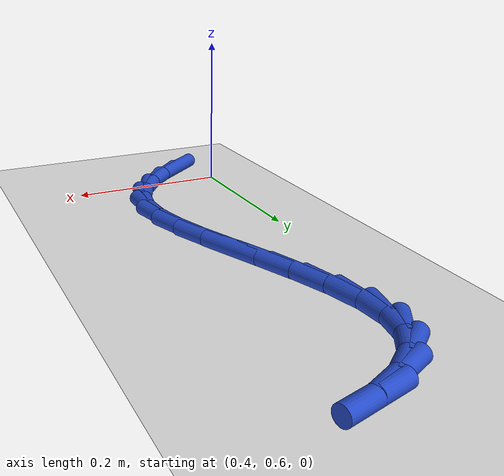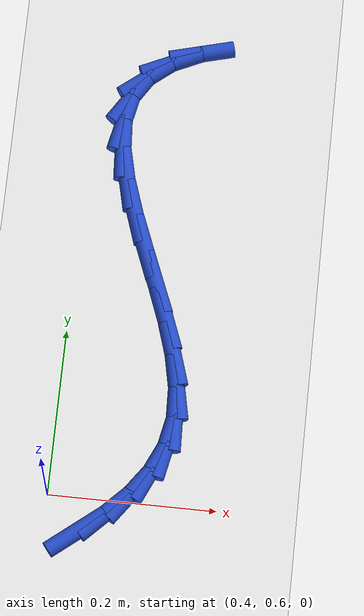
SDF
<sdf version="1.6">
 <world name="default">
  <model name="ground_plane">
   <static>1</static>
   <link name="link">
    <collision name="collision">
     <geometry><plane><normal>0 0 1</normal><size>100 100</size></plane></geometry>
     <surface><friction><ode><mu>100</mu><mu2>50</mu2></ode></friction></surface>
    </collision>
    <visual name="visual">
     <cast_shadows>0</cast_shadows>
     <geometry><plane><normal>0 0 1</normal><size>100 100</size></plane></geometry>
     <material>
      <script><uri>file://media/materials/scripts/gazebo.material</uri><name>Gazebo/WhiteGlow</name></script>
     </material>
    </visual>
   </link>
  </model>
  <model name="line">
   <link name="link_18">
    <pose>0.4389373444597569 0.5576127364197254 0.01 0 1.57 0.6746091817504541</pose>
    <collision name="collision">
     <geometry><cylinder><radius>0.01</radius><length>0.08</length></cylinder></geometry>
    </collision>
    <visual name="visual">
     <material>
      <script><name>Gazebo/Blue</name><uri>file://media/materials/scripts/gazebo.material</uri></script>
     </material>
     <geometry><cylinder><radius>0.01</radius><length>0.08</length></cylinder></geometry>
    </visual>
   </link>
   <link name="link_19">
    <pose>0.4703544971780613 0.5827396704660501 0.01 0 1.57 0.7889035346942662</pose>
    <collision name="collision">
     <geometry><cylinder><radius>0.01</radius><length>0.08</length></cylinder></geometry>
    </collision>
    <visual name="visual">
     <material>
      <script><name>Gazebo/Blue</name><uri>file://media/materials/scripts/gazebo.material</uri></script>
     </material>
     <geometry><cylinder><radius>0.01</radius><length>0.08</length></cylinder></geometry>
    </visual>
   </link>
   <link name="link_20">
    <pose>0.4970223685246496 0.6095951618404989 0.01 0 1.57 0.9435782249534778</pose>
    <collision name="collision">
     <geometry><cylinder><radius>0.01</radius><length>0.08</length></cylinder></geometry>
    </collision>
    <visual name="visual">
     <material>
      <script><name>Gazebo/Blue</name><uri>file://media/materials/scripts/gazebo.material</uri></script>
     </material>
     <geometry><cylinder><radius>0.01</radius><length>0.08</length></cylinder></geometry>
    </visual>
   </link>
   <link name="link_21">
    <pose>0.518029826530738 0.6385764598512735 0.01 0 1.57 1.1411280348317558</pose>
    <collision name="collision">
     <geometry><cylinder><radius>0.01</radius><length>0.08</length></cylinder></geometry>
    </collision>
    <visual name="visual">
     <material>
      <script><name>Gazebo/Blue</name><uri>file://media/materials/scripts/gazebo.material</uri></script>
     </material>
     <geometry><cylinder><radius>0.01</radius><length>0.08</length></cylinder></geometry>
    </visual>
   </link>
   <link name="link_22">
    <pose>0.5324657392275438 0.6700808138065765 0.01 0 1.57 1.3714936634912922</pose>
    <collision name="collision">
     <geometry><cylinder><radius>0.01</radius><length>0.08</length></cylinder></geometry>
    </collision>
    <visual name="visual">
     <material>
      <script><name>Gazebo/Blue</name><uri>file://media/materials/scripts/gazebo.material</uri></script>
     </material>
     <geometry><cylinder><radius>0.01</radius><length>0.08</length></cylinder></geometry>
    </visual>
   </link>
   <link name="link_23">
    <pose>0.5394189746462833 0.7045054730146092 0.01 0 1.57 -1.5384329638940883</pose>
    <collision name="collision">
     <geometry><cylinder><radius>0.01</radius><length>0.08</length></cylinder></geometry>
    </collision>
    <visual name="visual">
     <material>
      <script><name>Gazebo/Blue</name><uri>file://media/materials/scripts/gazebo.material</uri></script>
     </material>
     <geometry><cylinder><radius>0.01</radius><length>0.08</length></cylinder></geometry>
    </visual>
   </link>
   <link name="link_24">
    <pose>0.5382001902299707 0.7421517113626651 0.01 0 1.57 -1.3685313954959126</pose>
    <collision name="collision">
     <geometry><cylinder><radius>0.01</radius><length>0.08</length></cylinder></geometry>
    </collision>
    <visual name="visual">
     <material>
      <script><name>Gazebo/Blue</name><uri>file://media/materials/scripts/gazebo.material</uri></script>
     </material>
     <geometry><cylinder><radius>0.01</radius><length>0.08</length></cylinder></geometry>
    </visual>
   </link>
   <link name="link_25">
    <pose>0.529917156613375 0.7825431339863955 0.01 0 1.57 -1.2645890546343348</pose>
    <collision name="collision">
     <geometry><cylinder><radius>0.01</radius><length>0.08</length></cylinder></geometry>
    </collision>
    <visual name="visual">
     <material>
      <script><name>Gazebo/Blue</name><uri>file://media/materials/scripts/gazebo.material</uri></script>
     </material>
     <geometry><cylinder><radius>0.01</radius><length>0.08</length></cylinder></geometry>
    </visual>
   </link>
   <link name="link_26">
    <pose>0.5165493606276207 0.8248261263508623 0.01 0 1.57 -1.207522079708169</pose>
    <collision name="collision">
     <geometry><cylinder><radius>0.01</radius><length>0.08</length></cylinder></geometry>
    </collision>
    <visual name="visual">
     <material>
      <script><name>Gazebo/Blue</name><uri>file://media/materials/scripts/gazebo.material</uri></script>
     </material>
     <geometry><cylinder><radius>0.01</radius><length>0.08</length></cylinder></geometry>
    </visual>
   </link>
   <link name="link_27">
    <pose>0.5000820379705058 0.8681445862013843 0.01 0 1.57 -1.186678607799389</pose>
    <collision name="collision">
     <geometry><cylinder><radius>0.01</radius><length>0.08</length></cylinder></geometry>
    </collision>
    <visual name="visual">
     <material>
      <script><name>Gazebo/Blue</name><uri>file://media/materials/scripts/gazebo.material</uri></script>
     </material>
     <geometry><cylinder><radius>0.01</radius><length>0.08</length></cylinder></geometry>
    </visual>
   </link>
   <link name="link_28">
    <pose>0.4825004243398282 0.9116424112832785 0.01 0 1.57 -1.1987285599157842</pose>
    <collision name="collision">
     <geometry><cylinder><radius>0.01</radius><length>0.08</length></cylinder></geometry>
    </collision>
    <visual name="visual">
     <material>
      <script><name>Gazebo/Blue</name><uri>file://media/materials/scripts/gazebo.material</uri></script>
     </material>
     <geometry><cylinder><radius>0.01</radius><length>0.08</length></cylinder></geometry>
    </visual>
   </link>
   <link name="link_29">
    <pose>0.46578975543338624 0.9544634993418641 0.01 0 1.57 -1.2470473855598898</pose>
    <collision name="collision">
     <geometry><cylinder><radius>0.01</radius><length>0.08</length></cylinder></geometry>
    </collision>
    <visual name="visual">
     <material>
      <script><name>Gazebo/Blue</name><uri>file://media/materials/scripts/gazebo.material</uri></script>
     </material>
     <geometry><cylinder><radius>0.01</radius><length>0.08</length></cylinder></geometry>
    </visual>
   </link>
   <link name="link_30">
    <pose>0.4519352669489779 0.9957517481224589 0.01 0 1.57 -1.3431114413769207</pose>
    <collision name="collision">
     <geometry><cylinder><radius>0.01</radius><length>0.08</length></cylinder></geometry>
    </collision>
    <visual name="visual">
     <material>
      <script><name>Gazebo/Blue</name><uri>file://media/materials/scripts/gazebo.material</uri></script>
     </material>
     <geometry><cylinder><radius>0.01</radius><length>0.08</length></cylinder></geometry>
    </visual>
   </link>
   <link name="link_31">
    <pose>0.44292219458440146 1.034651055370381 0.01 0 1.57 -1.5095501859078324</pose>
    <collision name="collision">
     <geometry><cylinder><radius>0.01</radius><length>0.08</length></cylinder></geometry>
    </collision>
    <visual name="visual">
     <material>
      <script><name>Gazebo/Blue</name><uri>file://media/materials/scripts/gazebo.material</uri></script>
     </material>
     <geometry><cylinder><radius>0.01</radius><length>0.08</length></cylinder></geometry>
    </visual>
   </link>
   <link name="link_32">
    <pose>0.440735774037455 1.0703053188309484 0.01 0 1.57 1.3638250067765472</pose>
    <collision name="collision">
     <geometry><cylinder><radius>0.01</radius><length>0.08</length></cylinder></geometry>
    </collision>
    <visual name="visual">
     <material>
      <script><name>Gazebo/Blue</name><uri>file://media/materials/scripts/gazebo.material</uri></script>
     </material>
     <geometry><cylinder><radius>0.01</radius><length>0.08</length></cylinder></geometry>
    </visual>
   </link>
   <link name="link_33">
    <pose>0.4473612410059365 1.101858436249479 0.01 0 1.57 1.0010813951349533</pose>
    <collision name="collision">
     <geometry><cylinder><radius>0.01</radius><length>0.08</length></cylinder></geometry>
    </collision>
    <visual name="visual">
     <material>
      <script><name>Gazebo/Blue</name><uri>file://media/materials/scripts/gazebo.material</uri></script>
     </material>
     <geometry><cylinder><radius>0.01</radius><length>0.08</length></cylinder></geometry>
    </visual>
   </link>
   <link name="link_34">
    <pose>0.4644480901876743 1.1285330294487175 0.01 0 1.57 0.6746042730657024</pose>
    <collision name="collision">
     <geometry><cylinder><radius>0.01</radius><length>0.08</length></cylinder></geometry>
    </collision>
    <visual name="visual">
     <material>
      <script><name>Gazebo/Blue</name><uri>file://media/materials/scripts/gazebo.material</uri></script>
     </material>
     <geometry><cylinder><radius>0.01</radius><length>0.08</length></cylinder></geometry>
    </visual>
   </link>
   <link name="link_35">
    <pose>0.4913901369211278 1.150080628774802 0.01 0 1.57 0.43509686882973314</pose>
    <collision name="collision">
     <geometry><cylinder><radius>0.01</radius><length>0.08</length></cylinder></geometry>
    </collision>
    <visual name="visual">
     <material>
      <script><name>Gazebo/Blue</name><uri>file://media/materials/scripts/gazebo.material</uri></script>
     </material>
     <geometry><cylinder><radius>0.01</radius><length>0.08</length></cylinder></geometry>
    </visual>
   </link>
   <link name="link_36">
    <pose>0.5266522029936462 1.166470593675032 0.01 0 1.57 0.2603942609655746</pose>
    <collision name="collision">
     <geometry><cylinder><radius>0.01</radius><length>0.08</length></cylinder></geometry>
    </collision>
    <visual name="visual">
     <material>
      <script><name>Gazebo/Blue</name><uri>file://media/materials/scripts/gazebo.material</uri></script>
     </material>
     <geometry><cylinder><radius>0.01</radius><length>0.08</length></cylinder></geometry>
    </visual>
   </link>
  </model>
 </world>
</sdf>
